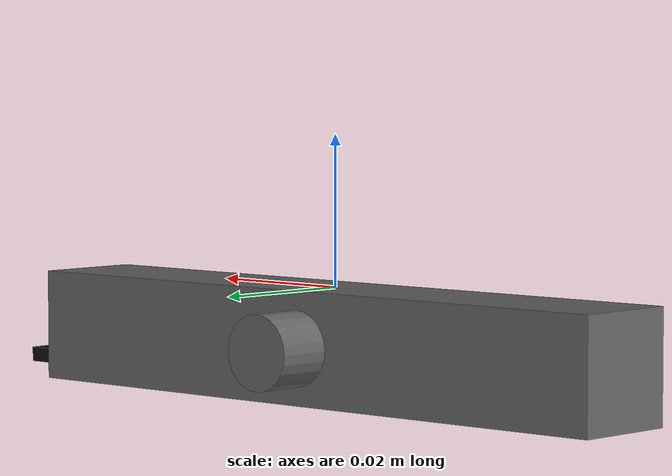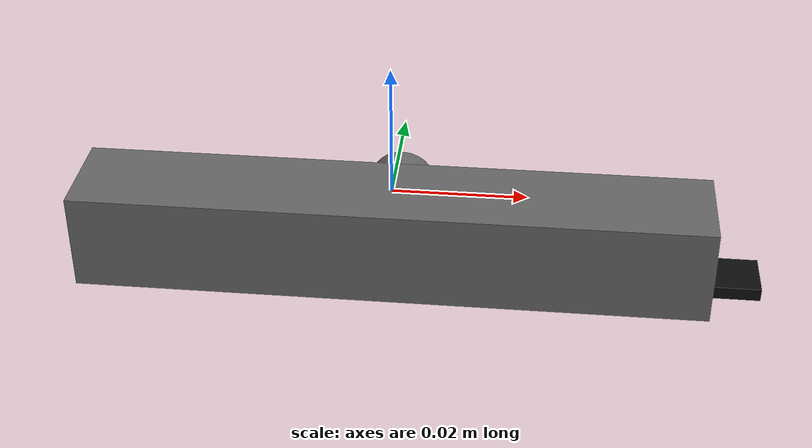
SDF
<?xml version="1.0"?>
<sdf version="1.7">
  <!-- Camera box model WITHOUT collision properties -->
  <!-- Based on manipulation/camera_box.sdf with collision element removed -->
  <model name="camera_box">
    <link name="base">
      <inertial>
        <pose>0 0 0.025 0 0 0 </pose>
        <mass>0.028</mass>
        <inertia>
          <ixx>1.17e-5</ixx>
          <ixy>0</ixy>
          <ixz>0</ixz>
          <iyy>1.9e-5</iyy>
          <iyz>0</iyz>
          <izz>1.9e-5</izz>
        </inertia>
      </inertial>
      <visual name="base">
        <pose>0 0 -0.0075 0 0 0</pose>
        <geometry>
          <box>
            <size>.095 .015 .015</size>
          </box>
        </geometry>
        <material>
          <diffuse>.4 .4 .4 1.</diffuse>
        </material>
      </visual>
      <visual name="cable">
        <pose>0.05 0 -0.0125 0 0 0</pose>
        <geometry>
          <box>
            <size>.01 .0075 .002</size>
          </box>
        </geometry>
        <material>
          <diffuse>.05 .05 .05 1.</diffuse>
        </material>
      </visual>
      <visual name="tripod_mount">
        <pose>0 0.01 -0.0075 1.57 0 0</pose>
        <geometry>
          <cylinder>
            <radius>0.005</radius>
            <length>0.01</length>
          </cylinder>
        </geometry>
        <material>
          <diffuse>.4 .4 .4 1.</diffuse>
        </material>
      </visual>
      <!-- Collision element removed to allow robot arm to pass through -->
    </link>
  </model>
</sdf>
